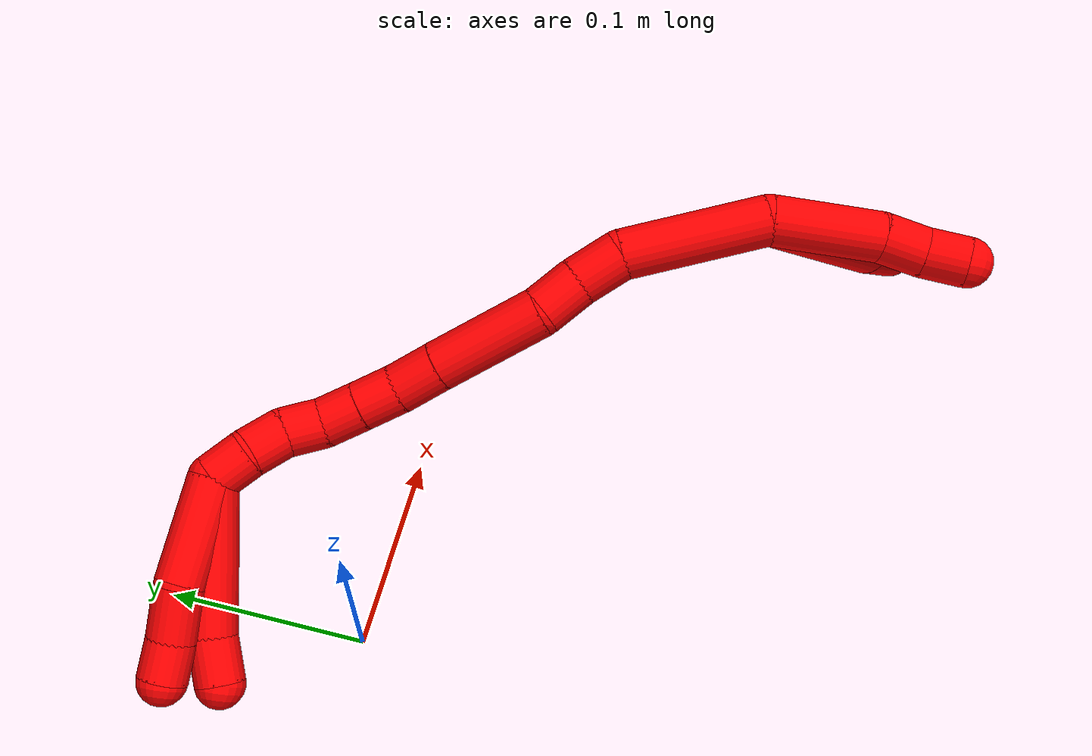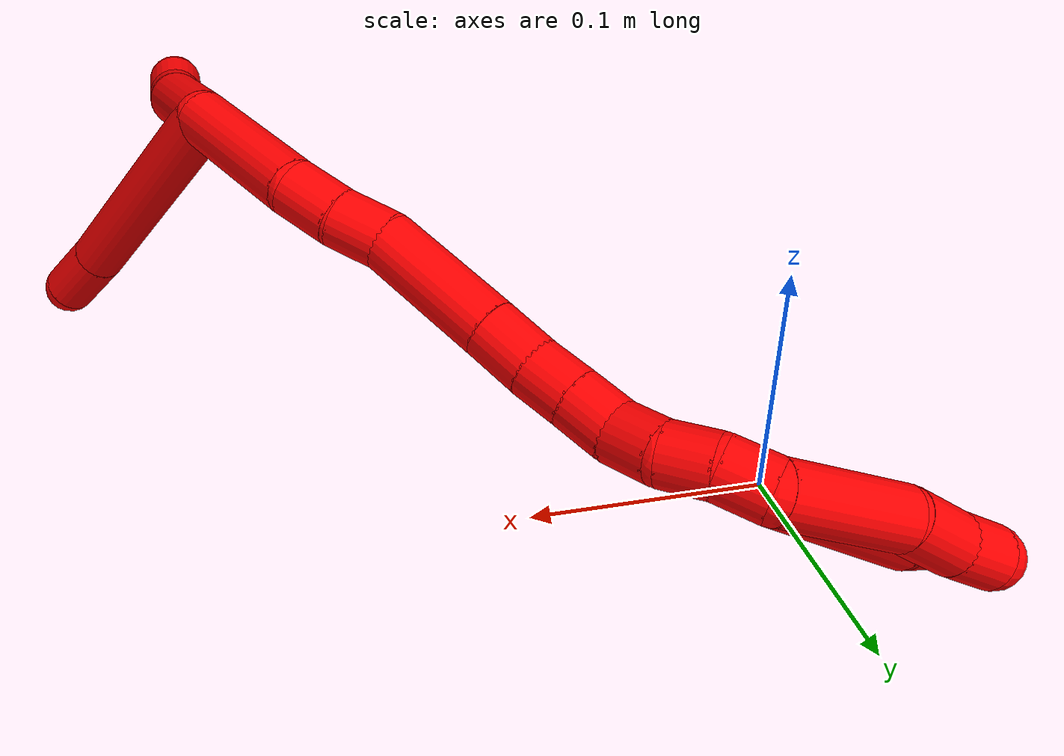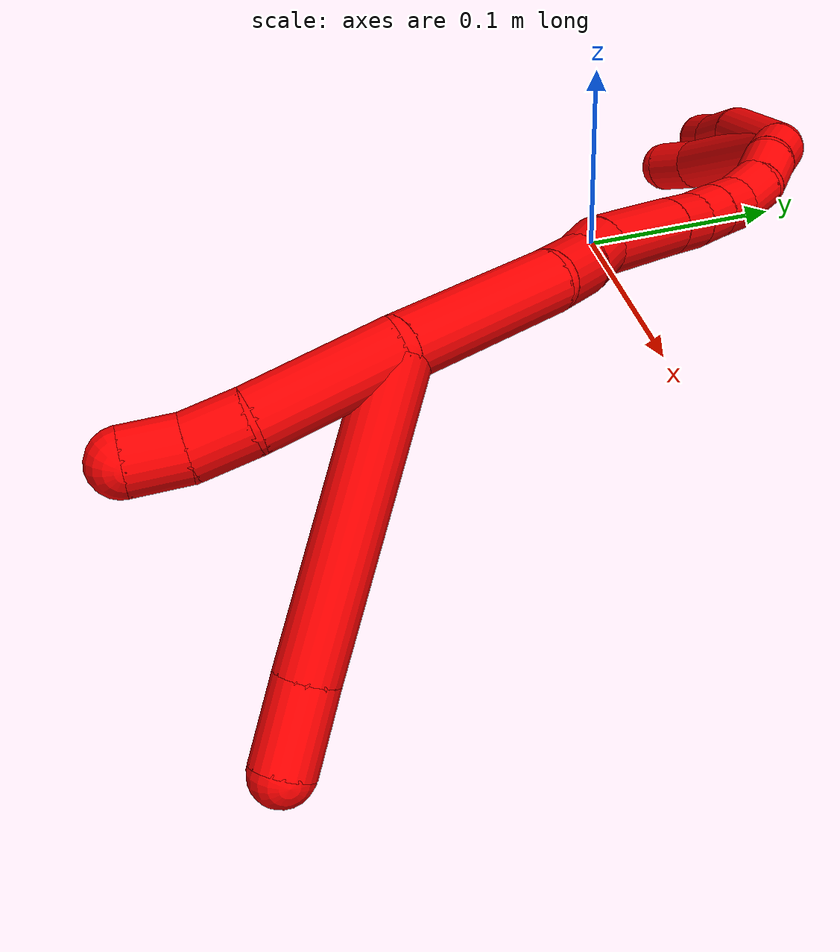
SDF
<sdf version="1.7">
 <world name="default">
  <model name="photoneo_s_sensor">
   <static>1</static>
   <pose>0 0 2 1.57079 1.57079 3.14159</pose>
   <link name="link">
    <inertial><mass>0.1</mass></inertial>
    <sensor name="sensor" type="depth">
     <update_rate>30</update_rate>
     <camera>
      <horizontal_fov>1.22</horizontal_fov>
      <image><width>1920</width><height>1200</height><format>B8G8R8</format></image>
      <clip><near>0.1</near><far>4</far></clip>
      <depth_camera><output>points</output></depth_camera>
     </camera>
     <plugin name="camera_plugin" filename="libgazebo_ros_depth_camera.so">
      <baseline>0.2</baseline>
      <alwaysOn>1</alwaysOn>
      <updateRate>0.0</updateRate>
      <cameraName>camera_ir</cameraName>
      <imageTopicName>/camera/color/image_raw</imageTopicName>
      <cameraInfoTopicName>/camera/color/camera_info</cameraInfoTopicName>
      <depthImageTopicName>/camera/depth/image_raw</depthImageTopicName>
      <depthImageCameraInfoTopicName>/camera/depth/camera_info</depthImageCameraInfoTopicName>
      <pointCloudTopicName>/camera/depth/points</pointCloudTopicName>
      <frameName>fr_optical</frameName>
      <pointCloudCutoff>0.1</pointCloudCutoff>
      <pointCloudCutoffMax>2.0</pointCloudCutoffMax>
      <distortionK1>0</distortionK1>
      <distortionK2>0</distortionK2>
      <distortionK3>0</distortionK3>
      <distortionT1>0</distortionT1>
      <distortionT2>0</distortionT2>
      <CxPrime>0</CxPrime>
      <Cx>0</Cx>
      <Cy>0</Cy>
      <focalLength>0</focalLength>
      <hackBaseline>0</hackBaseline>
     </plugin>
    </sensor>
   </link>
  </model>
  <model name="bin">
   <static>1</static>
   <link name="bottom">
    <collision name="collision-bottom">
     <pose>0 0 -0.01 0 -0 0</pose>
     <geometry><box><size>0.8 0.6 0.02</size></box></geometry>
     <surface>
      <friction><ode><mu>100</mu><mu2>100</mu2></ode></friction>
      <contact><collide_bitmask>65535</collide_bitmask></contact>
     </surface>
    </collision>
   </link>
   <link name="west_wall">
    <collision name="collision-west_wall">
     <pose>-0.41 0 0.1 0 -0 0</pose>
     <geometry><box><size>0.02 0.6 0.2</size></box></geometry>
     <surface>
      <friction><ode><mu>100</mu><mu2>100</mu2></ode></friction>
      <contact><collide_bitmask>65535</collide_bitmask></contact>
     </surface>
    </collision>
   </link>
   <link name="east_wall">
    <collision name="collision-east_wall">
     <pose>0.41 0 0.1 0 -0 0</pose>
     <geometry><box><size>0.02 0.6 0.2</size></box></geometry>
     <surface>
      <friction><ode><mu>100</mu><mu2>100</mu2></ode></friction>
      <contact><collide_bitmask>65535</collide_bitmask></contact>
     </surface>
    </collision>
   </link>
   <link name="south_wall">
    <collision name="collision-south_wall">
     <pose>0 -0.31 0.1 0 -0 0</pose>
     <geometry><box><size>0.8 0.02 0.2</size></box></geometry>
     <surface>
      <friction><ode><mu>100</mu><mu2>100</mu2></ode></friction>
      <contact><collide_bitmask>65535</collide_bitmask></contact>
     </surface>
    </collision>
   </link>
   <link name="north_wall">
    <collision name="collision-north_wall">
     <pose>0 0.31 0.1 0 -0 0</pose>
     <geometry><box><size>0.8 0.02 0.2</size></box></geometry>
     <surface>
      <friction><ode><mu>100</mu><mu2>100</mu2></ode></friction>
      <contact><collide_bitmask>65535</collide_bitmask></contact>
     </surface>
    </collision>
   </link>
  </model>
  <model name="2">
   <static>0</static>
   <link name="2">
    <collision name="collision-cylinder-e_1_2_8">
     <pose>0.057897 0.006328 0.006534 -0.769386 1.41496 -0.666613</pose>
     <geometry><cylinder><radius>0.0125</radius><length>0.117214</length></cylinder></geometry>
     <surface>
      <friction><ode><mu>1.16</mu><mu2>1.16</mu2><slip1>0</slip1><slip2>0</slip2></ode></friction>
      <contact><ode><kp>1e+06</kp><kd>1</kd><max_vel>0</max_vel><min_depth>0.001</min_depth></ode></contact>
     </surface>
    </collision>
    <visual name="visual-cylinder-e_1_2_8">
     <pose>0.057897 0.006328 0.006534 -0.769386 1.41496 -0.666613</pose>
     <geometry><cylinder><radius>0.0125</radius><length>0.117214</length></cylinder></geometry>
     <material><ambient>1 0 0 1</ambient></material>
    </visual>
    <collision name="collision-cylinder-e_2_8_6">
     <pose>0.131849 0.014365 0.015905 -0.542091 1.36734 -0.445306</pose>
     <geometry><cylinder><radius>0.0125</radius><length>0.032786</length></cylinder></geometry>
     <surface>
      <friction><ode><mu>1.16</mu><mu2>1.16</mu2><slip1>0</slip1><slip2>0</slip2></ode></friction>
      <contact><ode><kp>1e+06</kp><kd>1</kd><max_vel>0</max_vel><min_depth>0.001</min_depth></ode></contact>
     </surface>
    </collision>
    <visual name="visual-cylinder-e_2_8_6">
     <pose>0.131849 0.014365 0.015905 -0.542091 1.36734 -0.445306</pose>
     <geometry><cylinder><radius>0.0125</radius><length>0.032786</length></cylinder></geometry>
     <material><ambient>1 0 0 1</ambient></material>
    </visual>
    <collision name="collision-cylinder-e_1_2_9">
     <pose>0.020378 -0.019028 0.000604 1.53906 0.819394 0.796448</pose>
     <geometry><cylinder><radius>0.0125</radius><length>0.055773</length></cylinder></geometry>
     <surface>
      <friction><ode><mu>1.16</mu><mu2>1.16</mu2><slip1>0</slip1><slip2>0</slip2></ode></friction>
      <contact><ode><kp>1e+06</kp><kd>1</kd><max_vel>0</max_vel><min_depth>0.001</min_depth></ode></contact>
     </surface>
    </collision>
    <visual name="visual-cylinder-e_1_2_9">
     <pose>0.020378 -0.019028 0.000604 1.53906 0.819394 0.796448</pose>
     <geometry><cylinder><radius>0.0125</radius><length>0.055773</length></cylinder></geometry>
     <material><ambient>1 0 0 1</ambient></material>
    </visual>
    <collision name="collision-cylinder-e_2_9_10">
     <pose>0.048937 -0.045603 -0.000641 1.81115 0.811164 1.00159</pose>
     <geometry><cylinder><radius>0.0125</radius><length>0.022568</length></cylinder></geometry>
     <surface>
      <friction><ode><mu>1.16</mu><mu2>1.16</mu2><slip1>0</slip1><slip2>0</slip2></ode></friction>
      <contact><ode><kp>1e+06</kp><kd>1</kd><max_vel>0</max_vel><min_depth>0.001</min_depth></ode></contact>
     </surface>
    </collision>
    <visual name="visual-cylinder-e_2_9_10">
     <pose>0.048937 -0.045603 -0.000641 1.81115 0.811164 1.00159</pose>
     <geometry><cylinder><radius>0.0125</radius><length>0.022568</length></cylinder></geometry>
     <material><ambient>1 0 0 1</ambient></material>
    </visual>
    <collision name="collision-cylinder-e_3_10_5">
     <pose>0.063185 -0.062053 -0.003595 1.69412 0.594568 0.667429</pose>
     <geometry><cylinder><radius>0.0125</radius><length>0.021659</length></cylinder></geometry>
     <surface>
      <friction><ode><mu>1.16</mu><mu2>1.16</mu2><slip1>0</slip1><slip2>0</slip2></ode></friction>
      <contact><ode><kp>1e+06</kp><kd>1</kd><max_vel>0</max_vel><min_depth>0.001</min_depth></ode></contact>
     </surface>
    </collision>
    <visual name="visual-cylinder-e_3_10_5">
     <pose>0.063185 -0.062053 -0.003595 1.69412 0.594568 0.667429</pose>
     <geometry><cylinder><radius>0.0125</radius><length>0.021659</length></cylinder></geometry>
     <material><ambient>1 0 0 1</ambient></material>
    </visual>
    <collision name="collision-cylinder-e_1_2_11">
     <pose>-0.021047 0.026731 -0.013457 -2.03718 -0.612914 0.948869</pose>
     <geometry><cylinder><radius>0.0125</radius><length>0.073174</length></cylinder></geometry>
     <surface>
      <friction><ode><mu>1.16</mu><mu2>1.16</mu2><slip1>0</slip1><slip2>0</slip2></ode></friction>
      <contact><ode><kp>1e+06</kp><kd>1</kd><max_vel>0</max_vel><min_depth>0.001</min_depth></ode></contact>
     </surface>
    </collision>
    <visual name="visual-cylinder-e_1_2_11">
     <pose>-0.021047 0.026731 -0.013457 -2.03718 -0.612914 0.948869</pose>
     <geometry><cylinder><radius>0.0125</radius><length>0.073174</length></cylinder></geometry>
     <material><ambient>1 0 0 1</ambient></material>
    </visual>
    <collision name="collision-cylinder-e_2_11_12">
     <pose>-0.04723 0.061297 -0.034758 -2.3568 -0.433853 0.97867</pose>
     <geometry><cylinder><radius>0.0125</radius><length>0.024438</length></cylinder></geometry>
     <surface>
      <friction><ode><mu>1.16</mu><mu2>1.16</mu2><slip1>0</slip1><slip2>0</slip2></ode></friction>
      <contact><ode><kp>1e+06</kp><kd>1</kd><max_vel>0</max_vel><min_depth>0.001</min_depth></ode></contact>
     </surface>
    </collision>
    <visual name="visual-cylinder-e_2_11_12">
     <pose>-0.04723 0.061297 -0.034758 -2.3568 -0.433853 0.97867</pose>
     <geometry><cylinder><radius>0.0125</radius><length>0.024438</length></cylinder></geometry>
     <material><ambient>1 0 0 1</ambient></material>
    </visual>
    <collision name="collision-cylinder-e_3_12_13">
     <pose>-0.057308 0.075095 -0.050971 -2.52242 -0.448236 1.23829</pose>
     <geometry><cylinder><radius>0.0125</radius><length>0.022803</length></cylinder></geometry>
     <surface>
      <friction><ode><mu>1.16</mu><mu2>1.16</mu2><slip1>0</slip1><slip2>0</slip2></ode></friction>
      <contact><ode><kp>1e+06</kp><kd>1</kd><max_vel>0</max_vel><min_depth>0.001</min_depth></ode></contact>
     </surface>
    </collision>
    <visual name="visual-cylinder-e_3_12_13">
     <pose>-0.057308 0.075095 -0.050971 -2.52242 -0.448236 1.23829</pose>
     <geometry><cylinder><radius>0.0125</radius><length>0.022803</length></cylinder></geometry>
     <material><ambient>1 0 0 1</ambient></material>
    </visual>
    <collision name="collision-cylinder-e_4_13_14">
     <pose>-0.072809 0.101643 -0.075407 -2.2336 -0.384279 0.758688</pose>
     <geometry><cylinder><radius>0.0125</radius><length>0.056336</length></cylinder></geometry>
     <surface>
      <friction><ode><mu>1.16</mu><mu2>1.16</mu2><slip1>0</slip1><slip2>0</slip2></ode></friction>
      <contact><ode><kp>1e+06</kp><kd>1</kd><max_vel>0</max_vel><min_depth>0.001</min_depth></ode></contact>
     </surface>
    </collision>
    <visual name="visual-cylinder-e_4_13_14">
     <pose>-0.072809 0.101643 -0.075407 -2.2336 -0.384279 0.758688</pose>
     <geometry><cylinder><radius>0.0125</radius><length>0.056336</length></cylinder></geometry>
     <material><ambient>1 0 0 1</ambient></material>
    </visual>
    <collision name="collision-cylinder-e_5_14_15">
     <pose>-0.087399 0.130631 -0.098149 -2.24195 -0.359301 0.719519</pose>
     <geometry><cylinder><radius>0.0125</radius><length>0.022925</length></cylinder></geometry>
     <surface>
      <friction><ode><mu>1.16</mu><mu2>1.16</mu2><slip1>0</slip1><slip2>0</slip2></ode></friction>
      <contact><ode><kp>1e+06</kp><kd>1</kd><max_vel>0</max_vel><min_depth>0.001</min_depth></ode></contact>
     </surface>
    </collision>
    <visual name="visual-cylinder-e_5_14_15">
     <pose>-0.087399 0.130631 -0.098149 -2.24195 -0.359301 0.719519</pose>
     <geometry><cylinder><radius>0.0125</radius><length>0.022925</length></cylinder></geometry>
     <material><ambient>1 0 0 1</ambient></material>
    </visual>
    <collision name="collision-cylinder-e_6_15_16">
     <pose>-0.096036 0.146206 -0.110269 -2.22028 -0.472825 0.9039</pose>
     <geometry><cylinder><radius>0.0125</radius><length>0.020232</length></cylinder></geometry>
     <surface>
      <friction><ode><mu>1.16</mu><mu2>1.16</mu2><slip1>0</slip1><slip2>0</slip2></ode></friction>
      <contact><ode><kp>1e+06</kp><kd>1</kd><max_vel>0</max_vel><min_depth>0.001</min_depth></ode></contact>
     </surface>
    </collision>
    <visual name="visual-cylinder-e_6_15_16">
     <pose>-0.096036 0.146206 -0.110269 -2.22028 -0.472825 0.9039</pose>
     <geometry><cylinder><radius>0.0125</radius><length>0.020232</length></cylinder></geometry>
     <material><ambient>1 0 0 1</ambient></material>
    </visual>
    <collision name="collision-cylinder-e_7_16_17">
     <pose>-0.105117 0.160592 -0.121009 -2.20388 -0.463602 0.872161</pose>
     <geometry><cylinder><radius>0.0125</radius><length>0.020007</length></cylinder></geometry>
     <surface>
      <friction><ode><mu>1.16</mu><mu2>1.16</mu2><slip1>0</slip1><slip2>0</slip2></ode></friction>
      <contact><ode><kp>1e+06</kp><kd>1</kd><max_vel>0</max_vel><min_depth>0.001</min_depth></ode></contact>
     </surface>
    </collision>
    <visual name="visual-cylinder-e_7_16_17">
     <pose>-0.105117 0.160592 -0.121009 -2.20388 -0.463602 0.872161</pose>
     <geometry><cylinder><radius>0.0125</radius><length>0.020007</length></cylinder></geometry>
     <material><ambient>1 0 0 1</ambient></material>
    </visual>
    <collision name="collision-cylinder-e_8_17_18">
     <pose>-0.116604 0.17379 -0.130264 -2.15559 -0.773984 1.29793</pose>
     <geometry><cylinder><radius>0.0125</radius><length>0.020069</length></cylinder></geometry>
     <surface>
      <friction><ode><mu>1.16</mu><mu2>1.16</mu2><slip1>0</slip1><slip2>0</slip2></ode></friction>
      <contact><ode><kp>1e+06</kp><kd>1</kd><max_vel>0</max_vel><min_depth>0.001</min_depth></ode></contact>
     </surface>
    </collision>
    <visual name="visual-cylinder-e_8_17_18">
     <pose>-0.116604 0.17379 -0.130264 -2.15559 -0.773984 1.29793</pose>
     <geometry><cylinder><radius>0.0125</radius><length>0.020069</length></cylinder></geometry>
     <material><ambient>1 0 0 1</ambient></material>
    </visual>
    <collision name="collision-cylinder-e_9_18_19">
     <pose>-0.130391 0.183545 -0.140549 -2.60369 -0.743704 1.91111</pose>
     <geometry><cylinder><radius>0.0125</radius><length>0.020009</length></cylinder></geometry>
     <surface>
      <friction><ode><mu>1.16</mu><mu2>1.16</mu2><slip1>0</slip1><slip2>0</slip2></ode></friction>
      <contact><ode><kp>1e+06</kp><kd>1</kd><max_vel>0</max_vel><min_depth>0.001</min_depth></ode></contact>
     </surface>
    </collision>
    <visual name="visual-cylinder-e_9_18_19">
     <pose>-0.130391 0.183545 -0.140549 -2.60369 -0.743704 1.91111</pose>
     <geometry><cylinder><radius>0.0125</radius><length>0.020009</length></cylinder></geometry>
     <material><ambient>1 0 0 1</ambient></material>
    </visual>
    <collision name="collision-cylinder-e_10_19_1">
     <pose>-0.14211 0.192311 -0.153991 -2.52986 -0.517113 1.39444</pose>
     <geometry><cylinder><radius>0.0125</radius><length>0.020007</length></cylinder></geometry>
     <surface>
      <friction><ode><mu>1.16</mu><mu2>1.16</mu2><slip1>0</slip1><slip2>0</slip2></ode></friction>
      <contact><ode><kp>1e+06</kp><kd>1</kd><max_vel>0</max_vel><min_depth>0.001</min_depth></ode></contact>
     </surface>
    </collision>
    <visual name="visual-cylinder-e_10_19_1">
     <pose>-0.14211 0.192311 -0.153991 -2.52986 -0.517113 1.39444</pose>
     <geometry><cylinder><radius>0.0125</radius><length>0.020007</length></cylinder></geometry>
     <material><ambient>1 0 0 1</ambient></material>
    </visual>
    <collision name="collision-cylinder-e_1_1_20">
     <pose>-0.150123 0.19935 -0.187297 -3.06367 -0.11626 1.96127</pose>
     <geometry><cylinder><radius>0.0125</radius><length>0.052893</length></cylinder></geometry>
     <surface>
      <friction><ode><mu>1.16</mu><mu2>1.16</mu2><slip1>0</slip1><slip2>0</slip2></ode></friction>
      <contact><ode><kp>1e+06</kp><kd>1</kd><max_vel>0</max_vel><min_depth>0.001</min_depth></ode></contact>
     </surface>
    </collision>
    <visual name="visual-cylinder-e_1_1_20">
     <pose>-0.150123 0.19935 -0.187297 -3.06367 -0.11626 1.96127</pose>
     <geometry><cylinder><radius>0.0125</radius><length>0.052893</length></cylinder></geometry>
     <material><ambient>1 0 0 1</ambient></material>
    </visual>
    <collision name="collision-cylinder-e_2_20_21">
     <pose>-0.151263 0.20351 -0.226662 -2.98241 0.143455 -1.46658</pose>
     <geometry><cylinder><radius>0.0125</radius><length>0.026967</length></cylinder></geometry>
     <surface>
      <friction><ode><mu>1.16</mu><mu2>1.16</mu2><slip1>0</slip1><slip2>0</slip2></ode></friction>
      <contact><ode><kp>1e+06</kp><kd>1</kd><max_vel>0</max_vel><min_depth>0.001</min_depth></ode></contact>
     </surface>
    </collision>
    <visual name="visual-cylinder-e_2_20_21">
     <pose>-0.151263 0.20351 -0.226662 -2.98241 0.143455 -1.46658</pose>
     <geometry><cylinder><radius>0.0125</radius><length>0.026967</length></cylinder></geometry>
     <material><ambient>1 0 0 1</ambient></material>
    </visual>
    <collision name="collision-cylinder-e_3_21_4">
     <pose>-0.149105 0.206889 -0.249826 -3.01574 0.022933 -0.360039</pose>
     <geometry><cylinder><radius>0.0125</radius><length>0.02014</length></cylinder></geometry>
     <surface>
      <friction><ode><mu>1.16</mu><mu2>1.16</mu2><slip1>0</slip1><slip2>0</slip2></ode></friction>
      <contact><ode><kp>1e+06</kp><kd>1</kd><max_vel>0</max_vel><min_depth>0.001</min_depth></ode></contact>
     </surface>
    </collision>
    <visual name="visual-cylinder-e_3_21_4">
     <pose>-0.149105 0.206889 -0.249826 -3.01574 0.022933 -0.360039</pose>
     <geometry><cylinder><radius>0.0125</radius><length>0.02014</length></cylinder></geometry>
     <material><ambient>1 0 0 1</ambient></material>
    </visual>
    <collision name="collision-cylinder-e_1_1_22">
     <pose>-0.139101 0.197933 -0.198461 -3.12479 0.209804 -2.98237</pose>
     <geometry><cylinder><radius>0.0125</radius><length>0.076388</length></cylinder></geometry>
     <surface>
      <friction><ode><mu>1.16</mu><mu2>1.16</mu2><slip1>0</slip1><slip2>0</slip2></ode></friction>
      <contact><ode><kp>1e+06</kp><kd>1</kd><max_vel>0</max_vel><min_depth>0.001</min_depth></ode></contact>
     </surface>
    </collision>
    <visual name="visual-cylinder-e_1_1_22">
     <pose>-0.139101 0.197933 -0.198461 -3.12479 0.209804 -2.98237</pose>
     <geometry><cylinder><radius>0.0125</radius><length>0.076388</length></cylinder></geometry>
     <material><ambient>1 0 0 1</ambient></material>
    </visual>
    <collision name="collision-cylinder-e_2_22_3">
     <pose>-0.128237 0.196204 -0.247008 2.93413 0.248989 1.75383</pose>
     <geometry><cylinder><radius>0.0125</radius><length>0.023612</length></cylinder></geometry>
     <surface>
      <friction><ode><mu>1.16</mu><mu2>1.16</mu2><slip1>0</slip1><slip2>0</slip2></ode></friction>
      <contact><ode><kp>1e+06</kp><kd>1</kd><max_vel>0</max_vel><min_depth>0.001</min_depth></ode></contact>
     </surface>
    </collision>
    <visual name="visual-cylinder-e_2_22_3">
     <pose>-0.128237 0.196204 -0.247008 2.93413 0.248989 1.75383</pose>
     <geometry><cylinder><radius>0.0125</radius><length>0.023612</length></cylinder></geometry>
     <material><ambient>1 0 0 1</ambient></material>
    </visual>
    <collision name="collision-sphere-3">
     <pose>-0.125327 0.193847 -0.258205 0 -0 0</pose>
     <geometry><sphere><radius>0.0125</radius></sphere></geometry>
     <surface>
      <friction><ode><mu>1.16</mu><mu2>1.16</mu2><slip1>0</slip1><slip2>0</slip2></ode></friction>
      <contact><ode><kp>1e+06</kp><kd>1</kd><max_vel>0</max_vel><min_depth>0.001</min_depth></ode></contact>
     </surface>
    </collision>
    <visual name="visual-sphere-3">
     <pose>-0.125327 0.193847 -0.258205 0 -0 0</pose>
     <geometry><sphere><radius>0.0125</radius></sphere></geometry>
     <material><ambient>1 0 0 1</ambient></material>
    </visual>
    <collision name="collision-sphere-22">
     <pose>-0.131146 0.19856 -0.235812 0 -0 0</pose>
     <geometry><sphere><radius>0.0125</radius></sphere></geometry>
     <surface>
      <friction><ode><mu>1.16</mu><mu2>1.16</mu2><slip1>0</slip1><slip2>0</slip2></ode></friction>
      <contact><ode><kp>1e+06</kp><kd>1</kd><max_vel>0</max_vel><min_depth>0.001</min_depth></ode></contact>
     </surface>
    </collision>
    <visual name="visual-sphere-22">
     <pose>-0.131146 0.19856 -0.235812 0 -0 0</pose>
     <geometry><sphere><radius>0.0125</radius></sphere></geometry>
     <material><ambient>1 0 0 1</ambient></material>
    </visual>
    <collision name="collision-sphere-4">
     <pose>-0.148874 0.208152 -0.259814 0 -0 0</pose>
     <geometry><sphere><radius>0.0125</radius></sphere></geometry>
     <surface>
      <friction><ode><mu>1.16</mu><mu2>1.16</mu2><slip1>0</slip1><slip2>0</slip2></ode></friction>
      <contact><ode><kp>1e+06</kp><kd>1</kd><max_vel>0</max_vel><min_depth>0.001</min_depth></ode></contact>
     </surface>
    </collision>
    <visual name="visual-sphere-4">
     <pose>-0.148874 0.208152 -0.259814 0 -0 0</pose>
     <geometry><sphere><radius>0.0125</radius></sphere></geometry>
     <material><ambient>1 0 0 1</ambient></material>
    </visual>
    <collision name="collision-sphere-21">
     <pose>-0.149335 0.205625 -0.239838 0 -0 0</pose>
     <geometry><sphere><radius>0.0125</radius></sphere></geometry>
     <surface>
      <friction><ode><mu>1.16</mu><mu2>1.16</mu2><slip1>0</slip1><slip2>0</slip2></ode></friction>
      <contact><ode><kp>1e+06</kp><kd>1</kd><max_vel>0</max_vel><min_depth>0.001</min_depth></ode></contact>
     </surface>
    </collision>
    <visual name="visual-sphere-21">
     <pose>-0.149335 0.205625 -0.239838 0 -0 0</pose>
     <geometry><sphere><radius>0.0125</radius></sphere></geometry>
     <material><ambient>1 0 0 1</ambient></material>
    </visual>
    <collision name="collision-sphere-20">
     <pose>-0.153191 0.201395 -0.213486 0 -0 0</pose>
     <geometry><sphere><radius>0.0125</radius></sphere></geometry>
     <surface>
      <friction><ode><mu>1.16</mu><mu2>1.16</mu2><slip1>0</slip1><slip2>0</slip2></ode></friction>
      <contact><ode><kp>1e+06</kp><kd>1</kd><max_vel>0</max_vel><min_depth>0.001</min_depth></ode></contact>
     </surface>
    </collision>
    <visual name="visual-sphere-20">
     <pose>-0.153191 0.201395 -0.213486 0 -0 0</pose>
     <geometry><sphere><radius>0.0125</radius></sphere></geometry>
     <material><ambient>1 0 0 1</ambient></material>
    </visual>
    <collision name="collision-sphere-5">
     <pose>0.069251 -0.070956 -0.004698 0 -0 0</pose>
     <geometry><sphere><radius>0.0125</radius></sphere></geometry>
     <surface>
      <friction><ode><mu>1.16</mu><mu2>1.16</mu2><slip1>0</slip1><slip2>0</slip2></ode></friction>
      <contact><ode><kp>1e+06</kp><kd>1</kd><max_vel>0</max_vel><min_depth>0.001</min_depth></ode></contact>
     </surface>
    </collision>
    <visual name="visual-sphere-5">
     <pose>0.069251 -0.070956 -0.004698 0 -0 0</pose>
     <geometry><sphere><radius>0.0125</radius></sphere></geometry>
     <material><ambient>1 0 0 1</ambient></material>
    </visual>
    <collision name="collision-sphere-10">
     <pose>0.057119 -0.05315 -0.002491 0 -0 0</pose>
     <geometry><sphere><radius>0.0125</radius></sphere></geometry>
     <surface>
      <friction><ode><mu>1.16</mu><mu2>1.16</mu2><slip1>0</slip1><slip2>0</slip2></ode></friction>
      <contact><ode><kp>1e+06</kp><kd>1</kd><max_vel>0</max_vel><min_depth>0.001</min_depth></ode></contact>
     </surface>
    </collision>
    <visual name="visual-sphere-10">
     <pose>0.057119 -0.05315 -0.002491 0 -0 0</pose>
     <geometry><sphere><radius>0.0125</radius></sphere></geometry>
     <material><ambient>1 0 0 1</ambient></material>
    </visual>
    <collision name="collision-sphere-6">
     <pose>0.147903 0.016074 0.018743 0 -0 0</pose>
     <geometry><sphere><radius>0.0125</radius></sphere></geometry>
     <surface>
      <friction><ode><mu>1.16</mu><mu2>1.16</mu2><slip1>0</slip1><slip2>0</slip2></ode></friction>
      <contact><ode><kp>1e+06</kp><kd>1</kd><max_vel>0</max_vel><min_depth>0.001</min_depth></ode></contact>
     </surface>
    </collision>
    <visual name="visual-sphere-6">
     <pose>0.147903 0.016074 0.018743 0 -0 0</pose>
     <geometry><sphere><radius>0.0125</radius></sphere></geometry>
     <material><ambient>1 0 0 1</ambient></material>
    </visual>
    <collision name="collision-sphere-9">
     <pose>0.040755 -0.038055 0.001208 0 -0 0</pose>
     <geometry><sphere><radius>0.0125</radius></sphere></geometry>
     <surface>
      <friction><ode><mu>1.16</mu><mu2>1.16</mu2><slip1>0</slip1><slip2>0</slip2></ode></friction>
      <contact><ode><kp>1e+06</kp><kd>1</kd><max_vel>0</max_vel><min_depth>0.001</min_depth></ode></contact>
     </surface>
    </collision>
    <visual name="visual-sphere-9">
     <pose>0.040755 -0.038055 0.001208 0 -0 0</pose>
     <geometry><sphere><radius>0.0125</radius></sphere></geometry>
     <material><ambient>1 0 0 1</ambient></material>
    </visual>
    <collision name="collision-sphere-2">
     <geometry><sphere><radius>0.0125</radius></sphere></geometry>
     <surface>
      <friction><ode><mu>1.16</mu><mu2>1.16</mu2><slip1>0</slip1><slip2>0</slip2></ode></friction>
      <contact><ode><kp>1e+06</kp><kd>1</kd><max_vel>0</max_vel><min_depth>0.001</min_depth></ode></contact>
     </surface>
    </collision>
    <visual name="visual-sphere-2">
     <geometry><sphere><radius>0.0125</radius></sphere></geometry>
     <material><ambient>1 0 0 1</ambient></material>
    </visual>
    <collision name="collision-sphere-19">
     <pose>-0.137164 0.187318 -0.146872 0 -0 0</pose>
     <geometry><sphere><radius>0.0125</radius></sphere></geometry>
     <surface>
      <friction><ode><mu>1.16</mu><mu2>1.16</mu2><slip1>0</slip1><slip2>0</slip2></ode></friction>
      <contact><ode><kp>1e+06</kp><kd>1</kd><max_vel>0</max_vel><min_depth>0.001</min_depth></ode></contact>
     </surface>
    </collision>
    <visual name="visual-sphere-19">
     <pose>-0.137164 0.187318 -0.146872 0 -0 0</pose>
     <geometry><sphere><radius>0.0125</radius></sphere></geometry>
     <material><ambient>1 0 0 1</ambient></material>
    </visual>
    <collision name="collision-sphere-8">
     <pose>0.115794 0.012656 0.013068 0 -0 0</pose>
     <geometry><sphere><radius>0.0125</radius></sphere></geometry>
     <surface>
      <friction><ode><mu>1.16</mu><mu2>1.16</mu2><slip1>0</slip1><slip2>0</slip2></ode></friction>
      <contact><ode><kp>1e+06</kp><kd>1</kd><max_vel>0</max_vel><min_depth>0.001</min_depth></ode></contact>
     </surface>
    </collision>
    <visual name="visual-sphere-8">
     <pose>0.115794 0.012656 0.013068 0 -0 0</pose>
     <geometry><sphere><radius>0.0125</radius></sphere></geometry>
     <material><ambient>1 0 0 1</ambient></material>
    </visual>
    <collision name="collision-sphere-11">
     <pose>-0.042093 0.053462 -0.026914 0 -0 0</pose>
     <geometry><sphere><radius>0.0125</radius></sphere></geometry>
     <surface>
      <friction><ode><mu>1.16</mu><mu2>1.16</mu2><slip1>0</slip1><slip2>0</slip2></ode></friction>
      <contact><ode><kp>1e+06</kp><kd>1</kd><max_vel>0</max_vel><min_depth>0.001</min_depth></ode></contact>
     </surface>
    </collision>
    <visual name="visual-sphere-11">
     <pose>-0.042093 0.053462 -0.026914 0 -0 0</pose>
     <geometry><sphere><radius>0.0125</radius></sphere></geometry>
     <material><ambient>1 0 0 1</ambient></material>
    </visual>
    <collision name="collision-sphere-12">
     <pose>-0.052366 0.069132 -0.042603 0 -0 0</pose>
     <geometry><sphere><radius>0.0125</radius></sphere></geometry>
     <surface>
      <friction><ode><mu>1.16</mu><mu2>1.16</mu2><slip1>0</slip1><slip2>0</slip2></ode></friction>
      <contact><ode><kp>1e+06</kp><kd>1</kd><max_vel>0</max_vel><min_depth>0.001</min_depth></ode></contact>
     </surface>
    </collision>
    <visual name="visual-sphere-12">
     <pose>-0.052366 0.069132 -0.042603 0 -0 0</pose>
     <geometry><sphere><radius>0.0125</radius></sphere></geometry>
     <material><ambient>1 0 0 1</ambient></material>
    </visual>
    <collision name="collision-sphere-13">
     <pose>-0.062249 0.081059 -0.059338 0 -0 0</pose>
     <geometry><sphere><radius>0.0125</radius></sphere></geometry>
     <surface>
      <friction><ode><mu>1.16</mu><mu2>1.16</mu2><slip1>0</slip1><slip2>0</slip2></ode></friction>
      <contact><ode><kp>1e+06</kp><kd>1</kd><max_vel>0</max_vel><min_depth>0.001</min_depth></ode></contact>
     </surface>
    </collision>
    <visual name="visual-sphere-13">
     <pose>-0.062249 0.081059 -0.059338 0 -0 0</pose>
     <geometry><sphere><radius>0.0125</radius></sphere></geometry>
     <material><ambient>1 0 0 1</ambient></material>
    </visual>
    <collision name="collision-sphere-14">
     <pose>-0.083369 0.122228 -0.091476 0 -0 0</pose>
     <geometry><sphere><radius>0.0125</radius></sphere></geometry>
     <surface>
      <friction><ode><mu>1.16</mu><mu2>1.16</mu2><slip1>0</slip1><slip2>0</slip2></ode></friction>
      <contact><ode><kp>1e+06</kp><kd>1</kd><max_vel>0</max_vel><min_depth>0.001</min_depth></ode></contact>
     </surface>
    </collision>
    <visual name="visual-sphere-14">
     <pose>-0.083369 0.122228 -0.091476 0 -0 0</pose>
     <geometry><sphere><radius>0.0125</radius></sphere></geometry>
     <material><ambient>1 0 0 1</ambient></material>
    </visual>
    <collision name="collision-sphere-15">
     <pose>-0.09143 0.139034 -0.104822 0 -0 0</pose>
     <geometry><sphere><radius>0.0125</radius></sphere></geometry>
     <surface>
      <friction><ode><mu>1.16</mu><mu2>1.16</mu2><slip1>0</slip1><slip2>0</slip2></ode></friction>
      <contact><ode><kp>1e+06</kp><kd>1</kd><max_vel>0</max_vel><min_depth>0.001</min_depth></ode></contact>
     </surface>
    </collision>
    <visual name="visual-sphere-15">
     <pose>-0.09143 0.139034 -0.104822 0 -0 0</pose>
     <geometry><sphere><radius>0.0125</radius></sphere></geometry>
     <material><ambient>1 0 0 1</ambient></material>
    </visual>
    <collision name="collision-sphere-16">
     <pose>-0.100643 0.153379 -0.115715 0 -0 0</pose>
     <geometry><sphere><radius>0.0125</radius></sphere></geometry>
     <surface>
      <friction><ode><mu>1.16</mu><mu2>1.16</mu2><slip1>0</slip1><slip2>0</slip2></ode></friction>
      <contact><ode><kp>1e+06</kp><kd>1</kd><max_vel>0</max_vel><min_depth>0.001</min_depth></ode></contact>
     </surface>
    </collision>
    <visual name="visual-sphere-16">
     <pose>-0.100643 0.153379 -0.115715 0 -0 0</pose>
     <geometry><sphere><radius>0.0125</radius></sphere></geometry>
     <material><ambient>1 0 0 1</ambient></material>
    </visual>
    <collision name="collision-sphere-17">
     <pose>-0.10959 0.167806 -0.126303 0 -0 0</pose>
     <geometry><sphere><radius>0.0125</radius></sphere></geometry>
     <surface>
      <friction><ode><mu>1.16</mu><mu2>1.16</mu2><slip1>0</slip1><slip2>0</slip2></ode></friction>
      <contact><ode><kp>1e+06</kp><kd>1</kd><max_vel>0</max_vel><min_depth>0.001</min_depth></ode></contact>
     </surface>
    </collision>
    <visual name="visual-sphere-17">
     <pose>-0.10959 0.167806 -0.126303 0 -0 0</pose>
     <geometry><sphere><radius>0.0125</radius></sphere></geometry>
     <material><ambient>1 0 0 1</ambient></material>
    </visual>
    <collision name="collision-sphere-18">
     <pose>-0.123618 0.179773 -0.134225 0 -0 0</pose>
     <geometry><sphere><radius>0.0125</radius></sphere></geometry>
     <surface>
      <friction><ode><mu>1.16</mu><mu2>1.16</mu2><slip1>0</slip1><slip2>0</slip2></ode></friction>
      <contact><ode><kp>1e+06</kp><kd>1</kd><max_vel>0</max_vel><min_depth>0.001</min_depth></ode></contact>
     </surface>
    </collision>
    <visual name="visual-sphere-18">
     <pose>-0.123618 0.179773 -0.134225 0 -0 0</pose>
     <geometry><sphere><radius>0.0125</radius></sphere></geometry>
     <material><ambient>1 0 0 1</ambient></material>
    </visual>
    <collision name="collision-sphere-1">
     <pose>-0.147055 0.197305 -0.161109 0 -0 0</pose>
     <geometry><sphere><radius>0.0125</radius></sphere></geometry>
     <surface>
      <friction><ode><mu>1.16</mu><mu2>1.16</mu2><slip1>0</slip1><slip2>0</slip2></ode></friction>
      <contact><ode><kp>1e+06</kp><kd>1</kd><max_vel>0</max_vel><min_depth>0.001</min_depth></ode></contact>
     </surface>
    </collision>
    <visual name="visual-sphere-1">
     <pose>-0.147055 0.197305 -0.161109 0 -0 0</pose>
     <geometry><sphere><radius>0.0125</radius></sphere></geometry>
     <material><ambient>1 0 0 1</ambient></material>
    </visual>
    <inertial>
     <pose>-0.04787 0.091728 -0.084624 0 -0 0</pose>
     <mass>0.75</mass>
     <inertia>
      <ixx>7.1e-05</ixx>
      <ixy>0</ixy>
      <ixz>0</ixz>
      <iyy>0.000256</iyy>
      <iyz>0</iyz>
      <izz>-0.000207</izz>
     </inertia>
    </inertial>
   </link>
   <pose>0.211516 -0.150146 0.124177 -0.93262 0.843441 -0.971629</pose>
  </model>
 </world>
</sdf>
